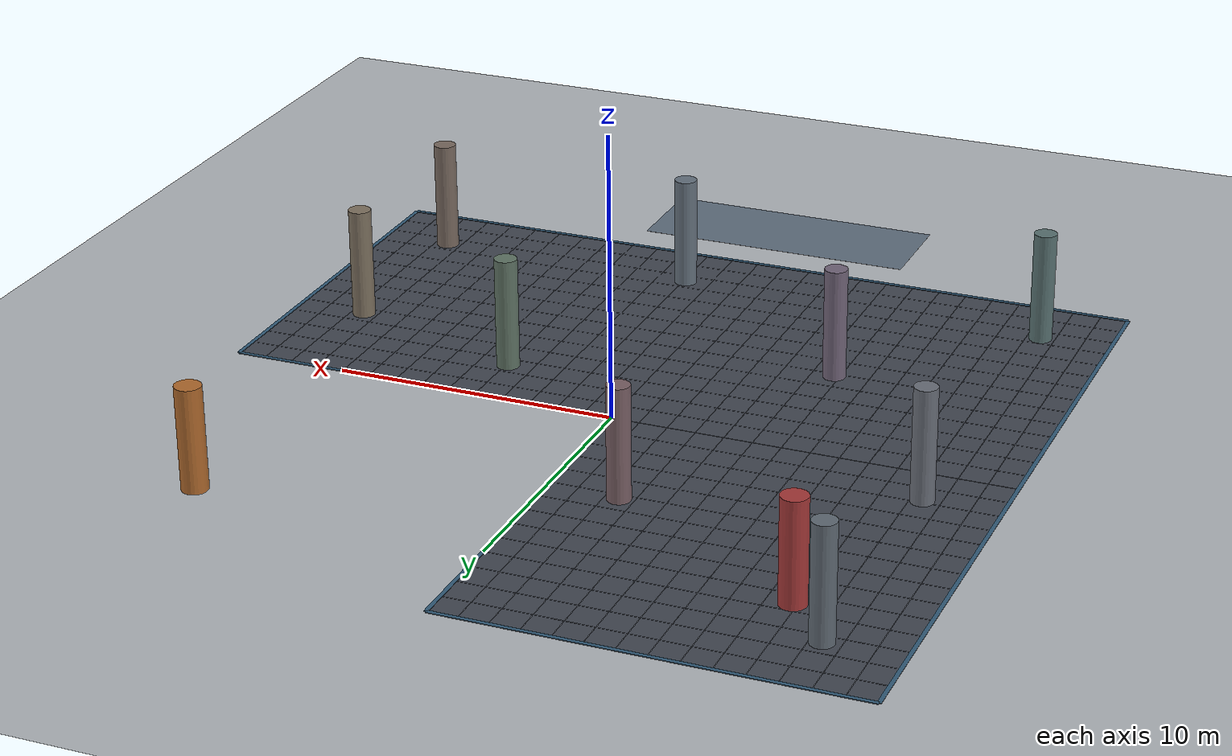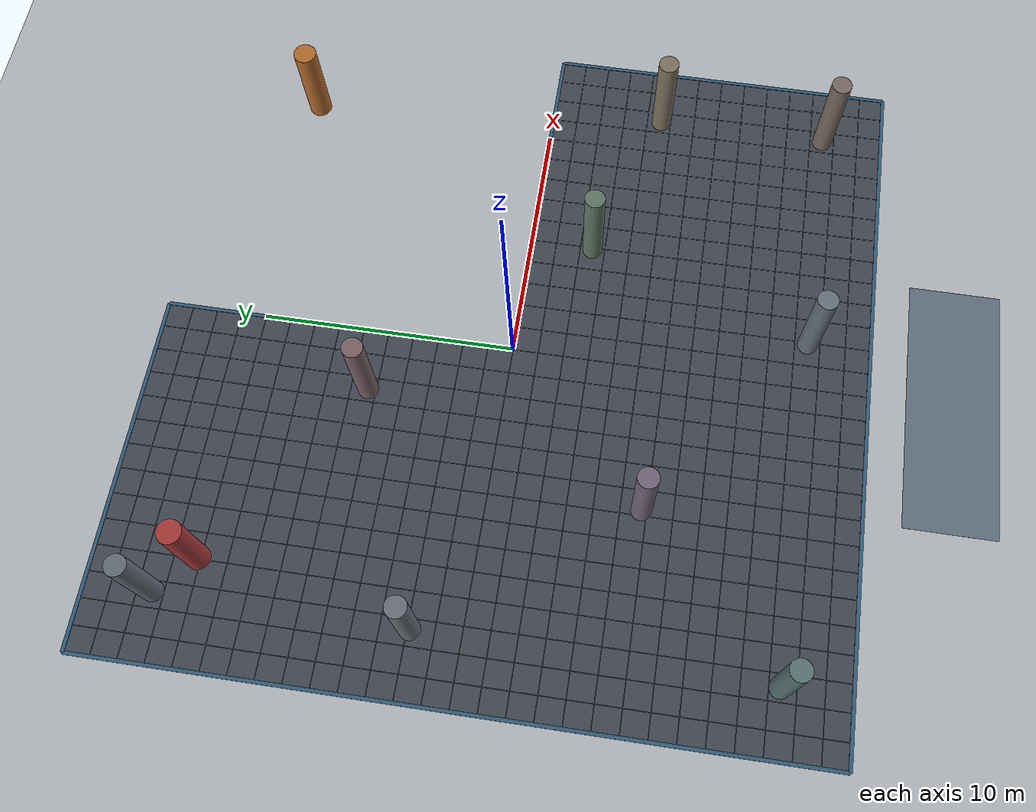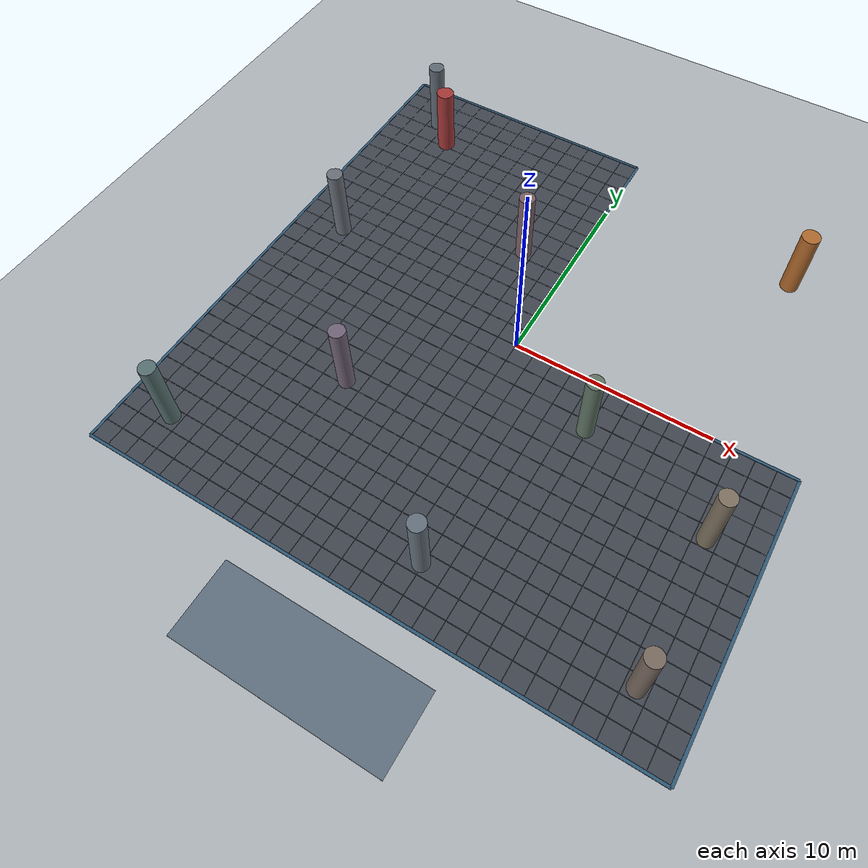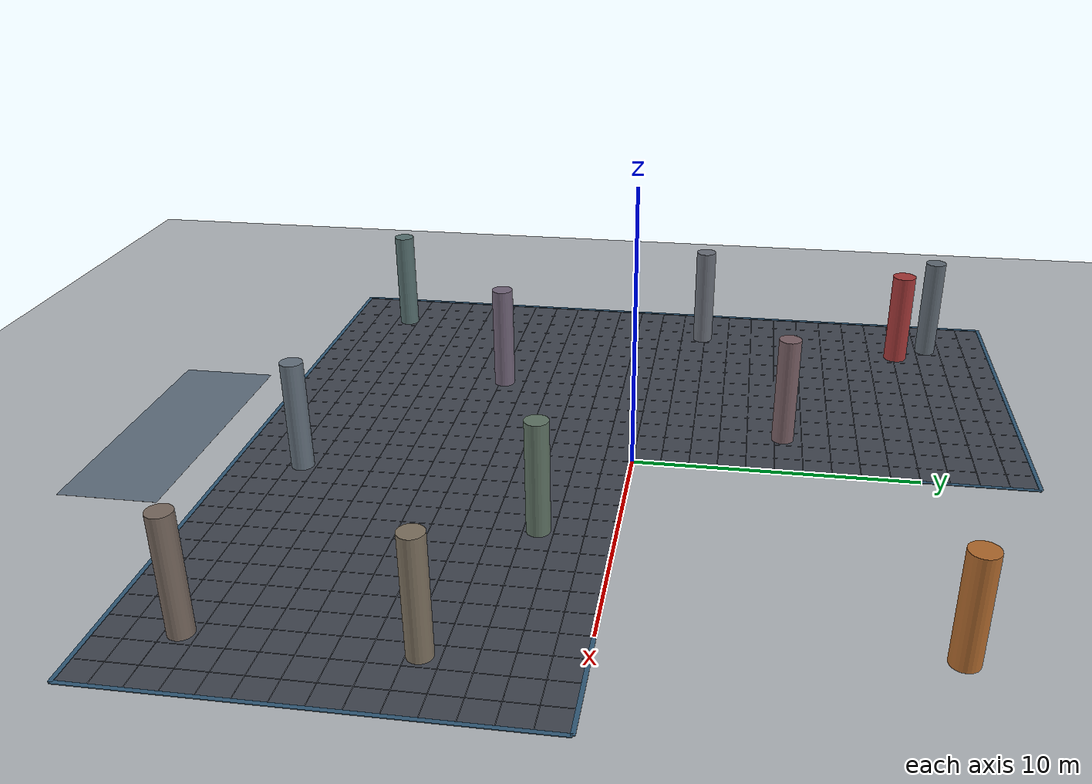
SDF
<?xml version="1.0" ?>
<sdf version="1.8">
  <world name="swarm_world">
    <!-- SPEEDUP SIMULATION: max_step_size=0.001 (1000Hz stable physics) & real_time_factor=1.0 -->
    <physics name="fast_physics" type="ode">
      <max_step_size>0.001</max_step_size>
      <real_time_factor>1.0</real_time_factor>
    </physics>

    <!-- SCENE CONFIG: Muted Architectural Lighting & Background -->
    <scene>
      <ambient>0.62 0.62 0.65 1.0</ambient>
      <background>0.78 0.80 0.83 1.0</background>
      <shadows>true</shadows>
      <grid>false</grid>
    </scene>

    <!-- PLUGIN INTI GAZEBO HARMONIC -->
    <plugin
      filename="gz-sim-physics-system"
      name="gz::sim::systems::Physics">
    </plugin>
    <plugin
      filename="gz-sim-user-commands-system"
      name="gz::sim::systems::UserCommands">
    </plugin>
    <plugin
      filename="gz-sim-scene-broadcaster-system"
      name="gz::sim::systems::SceneBroadcaster">
    </plugin>
    <plugin
      filename="gz-sim-sensors-system"
      name="gz::sim::systems::Sensors">
      <render_engine>ogre2</render_engine>
    </plugin>
    <plugin
      filename="gz-sim-wind-effects-system"
      name="gz::sim::systems::WindEffects">
      <force_approximation_scaling_factor>0.25</force_approximation_scaling_factor>
    </plugin>

    <!-- MATAHARI (SUN) - Soft Balanced Illumination -->
    <light type="directional" name="sun">
      <cast_shadows>true</cast_shadows>
      <pose>0 0 30 0 0 0</pose>
      <diffuse>0.85 0.85 0.87 1</diffuse>
      <specular>0.2 0.2 0.2 1</specular>
      <attenuation>
        <range>1000</range>
        <constant>0.9</constant>
        <linear>0.01</linear>
        <quadratic>0.001</quadratic>
      </attenuation>
      <direction>-0.4 0.2 -0.9</direction>
    </light>

    <!-- LANTAI LUAR (NEUTRAL MATTE CONCRETE EXTERIOR) -->
    <model name="ground_plane">
      <static>true</static>
      <link name="link">
        <collision name="collision">
          <geometry>
            <plane>
              <normal>0 0 1</normal>
              <size>100 100</size>
            </plane>
          </geometry>
        </collision>
        <visual name="visual">
          <geometry>
            <plane>
              <normal>0 0 1</normal>
              <size>100 100</size>
            </plane>
          </geometry>
          <material>
            <ambient>0.70 0.72 0.74 1.0</ambient>
            <diffuse>0.70 0.72 0.74 1.0</diffuse>
            <specular>0.1 0.1 0.1 1.0</specular>
          </material>
        </visual>
      </link>
    </model>

    <!-- GUI TOP-VIEW CAMERA PRESET -->
    <gui fullscreen="0">
      <camera name="user_camera">
        <pose>0.0 0.0 38.0 0.0 1.5708 1.5708</pose>
        <view_controller>orbit</view_controller>
      </camera>
    </gui>

    <!-- STAGING PAD AREA (LANDASAN AWAL 7 DRONE DI Y = -18m) -->
    <model name="staging_pad">
      <static>true</static>
      <link name="pad_link">
        <visual name="pad_v">
          <pose>0.0 -17.25 0.003 0 0 0</pose>
          <geometry><box><size>10.0 3.5 0.005</size></box></geometry>
          <material>
            <ambient>0.26 0.28 0.32 1.0</ambient>
            <diffuse>0.26 0.28 0.32 1.0</diffuse>
          </material>
        </visual>
        <visual name="pad_border">
          <pose>0.0 -17.25 0.005 0 0 0</pose>
          <geometry><box><size>10.1 3.6 0.003</size></box></geometry>
          <material>
            <ambient>0.38 0.44 0.50 1.0</ambient>
            <diffuse>0.38 0.44 0.50 1.0</diffuse>
          </material>
        </visual>
      </link>
    </model>
    <!-- VISUAL LANTAI ARENA & BORDER WILAYAH L_SHAPE                           -->
    <model name="visual_region_floor_l_shape">
      <static>true</static>
      <link name="floor_link">
        <visual name="floor_box_0">
          <pose>0.0000 -7.0000 0.003 0 0 0</pose>
          <geometry><box><size>28.0000 14.0000 0.005</size></box></geometry>
          <material>
            <ambient>0.26 0.28 0.32 1.0</ambient>
            <diffuse>0.26 0.28 0.32 1.0</diffuse>
            <specular>0.15 0.15 0.15 1.0</specular>
          </material>
        </visual>
        <visual name="floor_box_1">
          <pose>-7.0000 7.0000 0.003 0 0 0</pose>
          <geometry><box><size>14.0000 14.0000 0.005</size></box></geometry>
          <material>
            <ambient>0.26 0.28 0.32 1.0</ambient>
            <diffuse>0.26 0.28 0.32 1.0</diffuse>
            <specular>0.15 0.15 0.15 1.0</specular>
          </material>
        </visual>
        <visual name="grid_v_0">
          <pose>-14.00 -7.0000 0.005 0 0 0</pose>
          <geometry><box><size>0.025 14.0000 0.003</size></box></geometry>
          <material>
            <ambient>0.33 0.35 0.39 1.0</ambient>
            <diffuse>0.33 0.35 0.39 1.0</diffuse>
          </material>
        </visual>
        <visual name="grid_v_1">
          <pose>-13.00 -7.0000 0.005 0 0 0</pose>
          <geometry><box><size>0.025 14.0000 0.003</size></box></geometry>
          <material>
            <ambient>0.33 0.35 0.39 1.0</ambient>
            <diffuse>0.33 0.35 0.39 1.0</diffuse>
          </material>
        </visual>
        <visual name="grid_v_2">
          <pose>-12.00 -7.0000 0.005 0 0 0</pose>
          <geometry><box><size>0.025 14.0000 0.003</size></box></geometry>
          <material>
            <ambient>0.33 0.35 0.39 1.0</ambient>
            <diffuse>0.33 0.35 0.39 1.0</diffuse>
          </material>
        </visual>
        <visual name="grid_v_3">
          <pose>-11.00 -7.0000 0.005 0 0 0</pose>
          <geometry><box><size>0.025 14.0000 0.003</size></box></geometry>
          <material>
            <ambient>0.33 0.35 0.39 1.0</ambient>
            <diffuse>0.33 0.35 0.39 1.0</diffuse>
          </material>
        </visual>
        <visual name="grid_v_4">
          <pose>-10.00 -7.0000 0.005 0 0 0</pose>
          <geometry><box><size>0.025 14.0000 0.003</size></box></geometry>
          <material>
            <ambient>0.33 0.35 0.39 1.0</ambient>
            <diffuse>0.33 0.35 0.39 1.0</diffuse>
          </material>
        </visual>
        <visual name="grid_v_5">
          <pose>-9.00 -7.0000 0.005 0 0 0</pose>
          <geometry><box><size>0.025 14.0000 0.003</size></box></geometry>
          <material>
            <ambient>0.33 0.35 0.39 1.0</ambient>
            <diffuse>0.33 0.35 0.39 1.0</diffuse>
          </material>
        </visual>
        <visual name="grid_v_6">
          <pose>-8.00 -7.0000 0.005 0 0 0</pose>
          <geometry><box><size>0.025 14.0000 0.003</size></box></geometry>
          <material>
            <ambient>0.33 0.35 0.39 1.0</ambient>
            <diffuse>0.33 0.35 0.39 1.0</diffuse>
          </material>
        </visual>
        <visual name="grid_v_7">
          <pose>-7.00 -7.0000 0.005 0 0 0</pose>
          <geometry><box><size>0.025 14.0000 0.003</size></box></geometry>
          <material>
            <ambient>0.33 0.35 0.39 1.0</ambient>
            <diffuse>0.33 0.35 0.39 1.0</diffuse>
          </material>
        </visual>
        <visual name="grid_v_8">
          <pose>-6.00 -7.0000 0.005 0 0 0</pose>
          <geometry><box><size>0.025 14.0000 0.003</size></box></geometry>
          <material>
            <ambient>0.33 0.35 0.39 1.0</ambient>
            <diffuse>0.33 0.35 0.39 1.0</diffuse>
          </material>
        </visual>
        <visual name="grid_v_9">
          <pose>-5.00 -7.0000 0.005 0 0 0</pose>
          <geometry><box><size>0.025 14.0000 0.003</size></box></geometry>
          <material>
            <ambient>0.33 0.35 0.39 1.0</ambient>
            <diffuse>0.33 0.35 0.39 1.0</diffuse>
          </material>
        </visual>
        <visual name="grid_v_10">
          <pose>-4.00 -7.0000 0.005 0 0 0</pose>
          <geometry><box><size>0.025 14.0000 0.003</size></box></geometry>
          <material>
            <ambient>0.33 0.35 0.39 1.0</ambient>
            <diffuse>0.33 0.35 0.39 1.0</diffuse>
          </material>
        </visual>
        <visual name="grid_v_11">
          <pose>-3.00 -7.0000 0.005 0 0 0</pose>
          <geometry><box><size>0.025 14.0000 0.003</size></box></geometry>
          <material>
            <ambient>0.33 0.35 0.39 1.0</ambient>
            <diffuse>0.33 0.35 0.39 1.0</diffuse>
          </material>
        </visual>
        <visual name="grid_v_12">
          <pose>-2.00 -7.0000 0.005 0 0 0</pose>
          <geometry><box><size>0.025 14.0000 0.003</size></box></geometry>
          <material>
            <ambient>0.33 0.35 0.39 1.0</ambient>
            <diffuse>0.33 0.35 0.39 1.0</diffuse>
          </material>
        </visual>
        <visual name="grid_v_13">
          <pose>-1.00 -7.0000 0.005 0 0 0</pose>
          <geometry><box><size>0.025 14.0000 0.003</size></box></geometry>
          <material>
            <ambient>0.33 0.35 0.39 1.0</ambient>
            <diffuse>0.33 0.35 0.39 1.0</diffuse>
          </material>
        </visual>
        <visual name="grid_v_14">
          <pose>0.00 -7.0000 0.005 0 0 0</pose>
          <geometry><box><size>0.025 14.0000 0.003</size></box></geometry>
          <material>
            <ambient>0.33 0.35 0.39 1.0</ambient>
            <diffuse>0.33 0.35 0.39 1.0</diffuse>
          </material>
        </visual>
        <visual name="grid_v_15">
          <pose>1.00 -7.0000 0.005 0 0 0</pose>
          <geometry><box><size>0.025 14.0000 0.003</size></box></geometry>
          <material>
            <ambient>0.33 0.35 0.39 1.0</ambient>
            <diffuse>0.33 0.35 0.39 1.0</diffuse>
          </material>
        </visual>
        <visual name="grid_v_16">
          <pose>2.00 -7.0000 0.005 0 0 0</pose>
          <geometry><box><size>0.025 14.0000 0.003</size></box></geometry>
          <material>
            <ambient>0.33 0.35 0.39 1.0</ambient>
            <diffuse>0.33 0.35 0.39 1.0</diffuse>
          </material>
        </visual>
        <visual name="grid_v_17">
          <pose>3.00 -7.0000 0.005 0 0 0</pose>
          <geometry><box><size>0.025 14.0000 0.003</size></box></geometry>
          <material>
            <ambient>0.33 0.35 0.39 1.0</ambient>
            <diffuse>0.33 0.35 0.39 1.0</diffuse>
          </material>
        </visual>
        <visual name="grid_v_18">
          <pose>4.00 -7.0000 0.005 0 0 0</pose>
          <geometry><box><size>0.025 14.0000 0.003</size></box></geometry>
          <material>
            <ambient>0.33 0.35 0.39 1.0</ambient>
            <diffuse>0.33 0.35 0.39 1.0</diffuse>
          </material>
        </visual>
        <visual name="grid_v_19">
          <pose>5.00 -7.0000 0.005 0 0 0</pose>
          <geometry><box><size>0.025 14.0000 0.003</size></box></geometry>
          <material>
            <ambient>0.33 0.35 0.39 1.0</ambient>
            <diffuse>0.33 0.35 0.39 1.0</diffuse>
          </material>
        </visual>
        <visual name="grid_v_20">
          <pose>6.00 -7.0000 0.005 0 0 0</pose>
          <geometry><box><size>0.025 14.0000 0.003</size></box></geometry>
          <material>
            <ambient>0.33 0.35 0.39 1.0</ambient>
            <diffuse>0.33 0.35 0.39 1.0</diffuse>
          </material>
        </visual>
        <visual name="grid_v_21">
          <pose>7.00 -7.0000 0.005 0 0 0</pose>
          <geometry><box><size>0.025 14.0000 0.003</size></box></geometry>
          <material>
            <ambient>0.33 0.35 0.39 1.0</ambient>
            <diffuse>0.33 0.35 0.39 1.0</diffuse>
          </material>
        </visual>
        <visual name="grid_v_22">
          <pose>8.00 -7.0000 0.005 0 0 0</pose>
          <geometry><box><size>0.025 14.0000 0.003</size></box></geometry>
          <material>
            <ambient>0.33 0.35 0.39 1.0</ambient>
            <diffuse>0.33 0.35 0.39 1.0</diffuse>
          </material>
        </visual>
        <visual name="grid_v_23">
          <pose>9.00 -7.0000 0.005 0 0 0</pose>
          <geometry><box><size>0.025 14.0000 0.003</size></box></geometry>
          <material>
            <ambient>0.33 0.35 0.39 1.0</ambient>
            <diffuse>0.33 0.35 0.39 1.0</diffuse>
          </material>
        </visual>
        <visual name="grid_v_24">
          <pose>10.00 -7.0000 0.005 0 0 0</pose>
          <geometry><box><size>0.025 14.0000 0.003</size></box></geometry>
          <material>
            <ambient>0.33 0.35 0.39 1.0</ambient>
            <diffuse>0.33 0.35 0.39 1.0</diffuse>
          </material>
        </visual>
        <visual name="grid_v_25">
          <pose>11.00 -7.0000 0.005 0 0 0</pose>
          <geometry><box><size>0.025 14.0000 0.003</size></box></geometry>
          <material>
            <ambient>0.33 0.35 0.39 1.0</ambient>
            <diffuse>0.33 0.35 0.39 1.0</diffuse>
          </material>
        </visual>
        <visual name="grid_v_26">
          <pose>12.00 -7.0000 0.005 0 0 0</pose>
          <geometry><box><size>0.025 14.0000 0.003</size></box></geometry>
          <material>
            <ambient>0.33 0.35 0.39 1.0</ambient>
            <diffuse>0.33 0.35 0.39 1.0</diffuse>
          </material>
        </visual>
        <visual name="grid_v_27">
          <pose>13.00 -7.0000 0.005 0 0 0</pose>
          <geometry><box><size>0.025 14.0000 0.003</size></box></geometry>
          <material>
            <ambient>0.33 0.35 0.39 1.0</ambient>
            <diffuse>0.33 0.35 0.39 1.0</diffuse>
          </material>
        </visual>
        <visual name="grid_v_28">
          <pose>14.00 -7.0000 0.005 0 0 0</pose>
          <geometry><box><size>0.025 14.0000 0.003</size></box></geometry>
          <material>
            <ambient>0.33 0.35 0.39 1.0</ambient>
            <diffuse>0.33 0.35 0.39 1.0</diffuse>
          </material>
        </visual>
        <visual name="grid_h_29">
          <pose>0.0000 -14.00 0.005 0 0 0</pose>
          <geometry><box><size>28.0000 0.025 0.003</size></box></geometry>
          <material>
            <ambient>0.33 0.35 0.39 1.0</ambient>
            <diffuse>0.33 0.35 0.39 1.0</diffuse>
          </material>
        </visual>
        <visual name="grid_h_30">
          <pose>0.0000 -13.00 0.005 0 0 0</pose>
          <geometry><box><size>28.0000 0.025 0.003</size></box></geometry>
          <material>
            <ambient>0.33 0.35 0.39 1.0</ambient>
            <diffuse>0.33 0.35 0.39 1.0</diffuse>
          </material>
        </visual>
        <visual name="grid_h_31">
          <pose>0.0000 -12.00 0.005 0 0 0</pose>
          <geometry><box><size>28.0000 0.025 0.003</size></box></geometry>
          <material>
            <ambient>0.33 0.35 0.39 1.0</ambient>
            <diffuse>0.33 0.35 0.39 1.0</diffuse>
          </material>
        </visual>
        <visual name="grid_h_32">
          <pose>0.0000 -11.00 0.005 0 0 0</pose>
          <geometry><box><size>28.0000 0.025 0.003</size></box></geometry>
          <material>
            <ambient>0.33 0.35 0.39 1.0</ambient>
            <diffuse>0.33 0.35 0.39 1.0</diffuse>
          </material>
        </visual>
        <visual name="grid_h_33">
          <pose>0.0000 -10.00 0.005 0 0 0</pose>
          <geometry><box><size>28.0000 0.025 0.003</size></box></geometry>
          <material>
            <ambient>0.33 0.35 0.39 1.0</ambient>
            <diffuse>0.33 0.35 0.39 1.0</diffuse>
          </material>
        </visual>
        <visual name="grid_h_34">
          <pose>0.0000 -9.00 0.005 0 0 0</pose>
          <geometry><box><size>28.0000 0.025 0.003</size></box></geometry>
          <material>
            <ambient>0.33 0.35 0.39 1.0</ambient>
            <diffuse>0.33 0.35 0.39 1.0</diffuse>
          </material>
        </visual>
        <visual name="grid_h_35">
          <pose>0.0000 -8.00 0.005 0 0 0</pose>
          <geometry><box><size>28.0000 0.025 0.003</size></box></geometry>
          <material>
            <ambient>0.33 0.35 0.39 1.0</ambient>
            <diffuse>0.33 0.35 0.39 1.0</diffuse>
          </material>
        </visual>
        <visual name="grid_h_36">
          <pose>0.0000 -7.00 0.005 0 0 0</pose>
          <geometry><box><size>28.0000 0.025 0.003</size></box></geometry>
          <material>
            <ambient>0.33 0.35 0.39 1.0</ambient>
            <diffuse>0.33 0.35 0.39 1.0</diffuse>
          </material>
        </visual>
        <visual name="grid_h_37">
          <pose>0.0000 -6.00 0.005 0 0 0</pose>
          <geometry><box><size>28.0000 0.025 0.003</size></box></geometry>
          <material>
            <ambient>0.33 0.35 0.39 1.0</ambient>
            <diffuse>0.33 0.35 0.39 1.0</diffuse>
          </material>
        </visual>
        <visual name="grid_h_38">
          <pose>0.0000 -5.00 0.005 0 0 0</pose>
          <geometry><box><size>28.0000 0.025 0.003</size></box></geometry>
          <material>
            <ambient>0.33 0.35 0.39 1.0</ambient>
            <diffuse>0.33 0.35 0.39 1.0</diffuse>
          </material>
        </visual>
        <visual name="grid_h_39">
          <pose>0.0000 -4.00 0.005 0 0 0</pose>
          <geometry><box><size>28.0000 0.025 0.003</size></box></geometry>
          <material>
            <ambient>0.33 0.35 0.39 1.0</ambient>
            <diffuse>0.33 0.35 0.39 1.0</diffuse>
          </material>
        </visual>
        <visual name="grid_h_40">
          <pose>0.0000 -3.00 0.005 0 0 0</pose>
          <geometry><box><size>28.0000 0.025 0.003</size></box></geometry>
          <material>
            <ambient>0.33 0.35 0.39 1.0</ambient>
            <diffuse>0.33 0.35 0.39 1.0</diffuse>
          </material>
        </visual>
        <visual name="grid_h_41">
          <pose>0.0000 -2.00 0.005 0 0 0</pose>
          <geometry><box><size>28.0000 0.025 0.003</size></box></geometry>
          <material>
            <ambient>0.33 0.35 0.39 1.0</ambient>
            <diffuse>0.33 0.35 0.39 1.0</diffuse>
          </material>
        </visual>
        <visual name="grid_h_42">
          <pose>0.0000 -1.00 0.005 0 0 0</pose>
          <geometry><box><size>28.0000 0.025 0.003</size></box></geometry>
          <material>
            <ambient>0.33 0.35 0.39 1.0</ambient>
            <diffuse>0.33 0.35 0.39 1.0</diffuse>
          </material>
        </visual>
        <visual name="grid_h_43">
          <pose>0.0000 0.00 0.005 0 0 0</pose>
          <geometry><box><size>28.0000 0.025 0.003</size></box></geometry>
          <material>
            <ambient>0.33 0.35 0.39 1.0</ambient>
            <diffuse>0.33 0.35 0.39 1.0</diffuse>
          </material>
        </visual>
        <visual name="grid_v_44">
          <pose>-14.00 7.0000 0.005 0 0 0</pose>
          <geometry><box><size>0.025 14.0000 0.003</size></box></geometry>
          <material>
            <ambient>0.33 0.35 0.39 1.0</ambient>
            <diffuse>0.33 0.35 0.39 1.0</diffuse>
          </material>
        </visual>
        <visual name="grid_v_45">
          <pose>-13.00 7.0000 0.005 0 0 0</pose>
          <geometry><box><size>0.025 14.0000 0.003</size></box></geometry>
          <material>
            <ambient>0.33 0.35 0.39 1.0</ambient>
            <diffuse>0.33 0.35 0.39 1.0</diffuse>
          </material>
        </visual>
        <visual name="grid_v_46">
          <pose>-12.00 7.0000 0.005 0 0 0</pose>
          <geometry><box><size>0.025 14.0000 0.003</size></box></geometry>
          <material>
            <ambient>0.33 0.35 0.39 1.0</ambient>
            <diffuse>0.33 0.35 0.39 1.0</diffuse>
          </material>
        </visual>
        <visual name="grid_v_47">
          <pose>-11.00 7.0000 0.005 0 0 0</pose>
          <geometry><box><size>0.025 14.0000 0.003</size></box></geometry>
          <material>
            <ambient>0.33 0.35 0.39 1.0</ambient>
            <diffuse>0.33 0.35 0.39 1.0</diffuse>
          </material>
        </visual>
        <visual name="grid_v_48">
          <pose>-10.00 7.0000 0.005 0 0 0</pose>
          <geometry><box><size>0.025 14.0000 0.003</size></box></geometry>
          <material>
            <ambient>0.33 0.35 0.39 1.0</ambient>
            <diffuse>0.33 0.35 0.39 1.0</diffuse>
          </material>
        </visual>
        <visual name="grid_v_49">
          <pose>-9.00 7.0000 0.005 0 0 0</pose>
          <geometry><box><size>0.025 14.0000 0.003</size></box></geometry>
          <material>
            <ambient>0.33 0.35 0.39 1.0</ambient>
            <diffuse>0.33 0.35 0.39 1.0</diffuse>
          </material>
        </visual>
        <visual name="grid_v_50">
          <pose>-8.00 7.0000 0.005 0 0 0</pose>
          <geometry><box><size>0.025 14.0000 0.003</size></box></geometry>
          <material>
            <ambient>0.33 0.35 0.39 1.0</ambient>
            <diffuse>0.33 0.35 0.39 1.0</diffuse>
          </material>
        </visual>
        <visual name="grid_v_51">
          <pose>-7.00 7.0000 0.005 0 0 0</pose>
          <geometry><box><size>0.025 14.0000 0.003</size></box></geometry>
          <material>
            <ambient>0.33 0.35 0.39 1.0</ambient>
            <diffuse>0.33 0.35 0.39 1.0</diffuse>
          </material>
        </visual>
        <visual name="grid_v_52">
          <pose>-6.00 7.0000 0.005 0 0 0</pose>
          <geometry><box><size>0.025 14.0000 0.003</size></box></geometry>
          <material>
            <ambient>0.33 0.35 0.39 1.0</ambient>
            <diffuse>0.33 0.35 0.39 1.0</diffuse>
          </material>
        </visual>
        <visual name="grid_v_53">
          <pose>-5.00 7.0000 0.005 0 0 0</pose>
          <geometry><box><size>0.025 14.0000 0.003</size></box></geometry>
          <material>
            <ambient>0.33 0.35 0.39 1.0</ambient>
            <diffuse>0.33 0.35 0.39 1.0</diffuse>
          </material>
        </visual>
        <visual name="grid_v_54">
          <pose>-4.00 7.0000 0.005 0 0 0</pose>
          <geometry><box><size>0.025 14.0000 0.003</size></box></geometry>
          <material>
            <ambient>0.33 0.35 0.39 1.0</ambient>
            <diffuse>0.33 0.35 0.39 1.0</diffuse>
          </material>
        </visual>
        <visual name="grid_v_55">
          <pose>-3.00 7.0000 0.005 0 0 0</pose>
          <geometry><box><size>0.025 14.0000 0.003</size></box></geometry>
          <material>
            <ambient>0.33 0.35 0.39 1.0</ambient>
            <diffuse>0.33 0.35 0.39 1.0</diffuse>
          </material>
        </visual>
        <visual name="grid_v_56">
          <pose>-2.00 7.0000 0.005 0 0 0</pose>
          <geometry><box><size>0.025 14.0000 0.003</size></box></geometry>
          <material>
            <ambient>0.33 0.35 0.39 1.0</ambient>
            <diffuse>0.33 0.35 0.39 1.0</diffuse>
          </material>
        </visual>
        <visual name="grid_v_57">
          <pose>-1.00 7.0000 0.005 0 0 0</pose>
          <geometry><box><size>0.025 14.0000 0.003</size></box></geometry>
          <material>
            <ambient>0.33 0.35 0.39 1.0</ambient>
            <diffuse>0.33 0.35 0.39 1.0</diffuse>
          </material>
        </visual>
        <visual name="grid_v_58">
          <pose>0.00 7.0000 0.005 0 0 0</pose>
          <geometry><box><size>0.025 14.0000 0.003</size></box></geometry>
          <material>
            <ambient>0.33 0.35 0.39 1.0</ambient>
            <diffuse>0.33 0.35 0.39 1.0</diffuse>
          </material>
        </visual>
        <visual name="grid_h_59">
          <pose>-7.0000 0.00 0.005 0 0 0</pose>
          <geometry><box><size>14.0000 0.025 0.003</size></box></geometry>
          <material>
            <ambient>0.33 0.35 0.39 1.0</ambient>
            <diffuse>0.33 0.35 0.39 1.0</diffuse>
          </material>
        </visual>
        <visual name="grid_h_60">
          <pose>-7.0000 1.00 0.005 0 0 0</pose>
          <geometry><box><size>14.0000 0.025 0.003</size></box></geometry>
          <material>
            <ambient>0.33 0.35 0.39 1.0</ambient>
            <diffuse>0.33 0.35 0.39 1.0</diffuse>
          </material>
        </visual>
        <visual name="grid_h_61">
          <pose>-7.0000 2.00 0.005 0 0 0</pose>
          <geometry><box><size>14.0000 0.025 0.003</size></box></geometry>
          <material>
            <ambient>0.33 0.35 0.39 1.0</ambient>
            <diffuse>0.33 0.35 0.39 1.0</diffuse>
          </material>
        </visual>
        <visual name="grid_h_62">
          <pose>-7.0000 3.00 0.005 0 0 0</pose>
          <geometry><box><size>14.0000 0.025 0.003</size></box></geometry>
          <material>
            <ambient>0.33 0.35 0.39 1.0</ambient>
            <diffuse>0.33 0.35 0.39 1.0</diffuse>
          </material>
        </visual>
        <visual name="grid_h_63">
          <pose>-7.0000 4.00 0.005 0 0 0</pose>
          <geometry><box><size>14.0000 0.025 0.003</size></box></geometry>
          <material>
            <ambient>0.33 0.35 0.39 1.0</ambient>
            <diffuse>0.33 0.35 0.39 1.0</diffuse>
          </material>
        </visual>
        <visual name="grid_h_64">
          <pose>-7.0000 5.00 0.005 0 0 0</pose>
          <geometry><box><size>14.0000 0.025 0.003</size></box></geometry>
          <material>
            <ambient>0.33 0.35 0.39 1.0</ambient>
            <diffuse>0.33 0.35 0.39 1.0</diffuse>
          </material>
        </visual>
        <visual name="grid_h_65">
          <pose>-7.0000 6.00 0.005 0 0 0</pose>
          <geometry><box><size>14.0000 0.025 0.003</size></box></geometry>
          <material>
            <ambient>0.33 0.35 0.39 1.0</ambient>
            <diffuse>0.33 0.35 0.39 1.0</diffuse>
          </material>
        </visual>
        <visual name="grid_h_66">
          <pose>-7.0000 7.00 0.005 0 0 0</pose>
          <geometry><box><size>14.0000 0.025 0.003</size></box></geometry>
          <material>
            <ambient>0.33 0.35 0.39 1.0</ambient>
            <diffuse>0.33 0.35 0.39 1.0</diffuse>
          </material>
        </visual>
        <visual name="grid_h_67">
          <pose>-7.0000 8.00 0.005 0 0 0</pose>
          <geometry><box><size>14.0000 0.025 0.003</size></box></geometry>
          <material>
            <ambient>0.33 0.35 0.39 1.0</ambient>
            <diffuse>0.33 0.35 0.39 1.0</diffuse>
          </material>
        </visual>
        <visual name="grid_h_68">
          <pose>-7.0000 9.00 0.005 0 0 0</pose>
          <geometry><box><size>14.0000 0.025 0.003</size></box></geometry>
          <material>
            <ambient>0.33 0.35 0.39 1.0</ambient>
            <diffuse>0.33 0.35 0.39 1.0</diffuse>
          </material>
        </visual>
        <visual name="grid_h_69">
          <pose>-7.0000 10.00 0.005 0 0 0</pose>
          <geometry><box><size>14.0000 0.025 0.003</size></box></geometry>
          <material>
            <ambient>0.33 0.35 0.39 1.0</ambient>
            <diffuse>0.33 0.35 0.39 1.0</diffuse>
          </material>
        </visual>
        <visual name="grid_h_70">
          <pose>-7.0000 11.00 0.005 0 0 0</pose>
          <geometry><box><size>14.0000 0.025 0.003</size></box></geometry>
          <material>
            <ambient>0.33 0.35 0.39 1.0</ambient>
            <diffuse>0.33 0.35 0.39 1.0</diffuse>
          </material>
        </visual>
        <visual name="grid_h_71">
          <pose>-7.0000 12.00 0.005 0 0 0</pose>
          <geometry><box><size>14.0000 0.025 0.003</size></box></geometry>
          <material>
            <ambient>0.33 0.35 0.39 1.0</ambient>
            <diffuse>0.33 0.35 0.39 1.0</diffuse>
          </material>
        </visual>
        <visual name="grid_h_72">
          <pose>-7.0000 13.00 0.005 0 0 0</pose>
          <geometry><box><size>14.0000 0.025 0.003</size></box></geometry>
          <material>
            <ambient>0.33 0.35 0.39 1.0</ambient>
            <diffuse>0.33 0.35 0.39 1.0</diffuse>
          </material>
        </visual>
        <visual name="grid_h_73">
          <pose>-7.0000 14.00 0.005 0 0 0</pose>
          <geometry><box><size>14.0000 0.025 0.003</size></box></geometry>
          <material>
            <ambient>0.33 0.35 0.39 1.0</ambient>
            <diffuse>0.33 0.35 0.39 1.0</diffuse>
          </material>
        </visual>
      </link>
    </model>

    <!-- BORDER PEMBATAS KELILING (MUTED STEEL BLUE / SLATE CURB) -->
    <model name="region_perimeter_border_l_shape">
      <static>true</static>
      <link name="border_link">
        <visual name="border_edge_0">
          <pose>0.0000 -14.0000 0.015 0 0 0.0000</pose>
          <geometry><box><size>28.0000 0.14 0.025</size></box></geometry>
          <material>
            <ambient>0.20 0.36 0.48 1.0</ambient>
            <diffuse>0.20 0.36 0.48 1.0</diffuse>
            <specular>0.25 0.25 0.25 1.0</specular>
          </material>
        </visual>
        <visual name="border_edge_1">
          <pose>14.0000 -7.0000 0.015 0 0 1.5708</pose>
          <geometry><box><size>14.0000 0.14 0.025</size></box></geometry>
          <material>
            <ambient>0.20 0.36 0.48 1.0</ambient>
            <diffuse>0.20 0.36 0.48 1.0</diffuse>
            <specular>0.25 0.25 0.25 1.0</specular>
          </material>
        </visual>
        <visual name="border_edge_2">
          <pose>7.0000 0.0000 0.015 0 0 3.1416</pose>
          <geometry><box><size>14.0000 0.14 0.025</size></box></geometry>
          <material>
            <ambient>0.20 0.36 0.48 1.0</ambient>
            <diffuse>0.20 0.36 0.48 1.0</diffuse>
            <specular>0.25 0.25 0.25 1.0</specular>
          </material>
        </visual>
        <visual name="border_edge_3">
          <pose>0.0000 7.0000 0.015 0 0 1.5708</pose>
          <geometry><box><size>14.0000 0.14 0.025</size></box></geometry>
          <material>
            <ambient>0.20 0.36 0.48 1.0</ambient>
            <diffuse>0.20 0.36 0.48 1.0</diffuse>
            <specular>0.25 0.25 0.25 1.0</specular>
          </material>
        </visual>
        <visual name="border_edge_4">
          <pose>-7.0000 14.0000 0.015 0 0 3.1416</pose>
          <geometry><box><size>14.0000 0.14 0.025</size></box></geometry>
          <material>
            <ambient>0.20 0.36 0.48 1.0</ambient>
            <diffuse>0.20 0.36 0.48 1.0</diffuse>
            <specular>0.25 0.25 0.25 1.0</specular>
          </material>
        </visual>
        <visual name="border_edge_5">
          <pose>-14.0000 0.0000 0.015 0 0 -1.5708</pose>
          <geometry><box><size>28.0000 0.14 0.025</size></box></geometry>
          <material>
            <ambient>0.20 0.36 0.48 1.0</ambient>
            <diffuse>0.20 0.36 0.48 1.0</diffuse>
            <specular>0.25 0.25 0.25 1.0</specular>
          </material>
        </visual>
      </link>
    </model>
    <model name="static_obs_301">
      <static>true</static>
      <pose>1.9000 -11.5000 2.0000 0 0 0</pose>
      <link name="link">
        <collision name="collision">
          <geometry><cylinder><radius>0.4000</radius><length>4.0000</length></cylinder></geometry>
        </collision>
        <visual name="visual">
          <geometry><cylinder><radius>0.4000</radius><length>4.0000</length></cylinder></geometry>
          <material>
            <ambient>0.40 0.45 0.50 1.0</ambient>
            <diffuse>0.40 0.45 0.50 1.0</diffuse>
            <specular>0.3 0.3 0.3 1.0</specular>
          </material>
        </visual>
      </link>
    </model>

    <model name="static_obs_302">
      <static>true</static>
      <pose>11.5000 -11.5000 2.0000 0 0 0</pose>
      <link name="link">
        <collision name="collision">
          <geometry><cylinder><radius>0.4000</radius><length>4.0000</length></cylinder></geometry>
        </collision>
        <visual name="visual">
          <geometry><cylinder><radius>0.4000</radius><length>4.0000</length></cylinder></geometry>
          <material>
            <ambient>0.48 0.42 0.38 1.0</ambient>
            <diffuse>0.48 0.42 0.38 1.0</diffuse>
            <specular>0.3 0.3 0.3 1.0</specular>
          </material>
        </visual>
      </link>
    </model>

    <model name="static_obs_303">
      <static>true</static>
      <pose>-11.5000 -11.4000 2.0000 0 0 0</pose>
      <link name="link">
        <collision name="collision">
          <geometry><cylinder><radius>0.4000</radius><length>4.0000</length></cylinder></geometry>
        </collision>
        <visual name="visual">
          <geometry><cylinder><radius>0.4000</radius><length>4.0000</length></cylinder></geometry>
          <material>
            <ambient>0.35 0.45 0.45 1.0</ambient>
            <diffuse>0.35 0.45 0.45 1.0</diffuse>
            <specular>0.3 0.3 0.3 1.0</specular>
          </material>
        </visual>
      </link>
    </model>

    <model name="static_obs_304">
      <static>true</static>
      <pose>-5.8000 -5.8000 2.0000 0 0 0</pose>
      <link name="link">
        <collision name="collision">
          <geometry><cylinder><radius>0.4000</radius><length>4.0000</length></cylinder></geometry>
        </collision>
        <visual name="visual">
          <geometry><cylinder><radius>0.4000</radius><length>4.0000</length></cylinder></geometry>
          <material>
            <ambient>0.45 0.40 0.48 1.0</ambient>
            <diffuse>0.45 0.40 0.48 1.0</diffuse>
            <specular>0.3 0.3 0.3 1.0</specular>
          </material>
        </visual>
      </link>
    </model>

    <model name="static_obs_305">
      <static>true</static>
      <pose>11.5000 -4.6000 2.0000 0 0 0</pose>
      <link name="link">
        <collision name="collision">
          <geometry><cylinder><radius>0.4000</radius><length>4.0000</length></cylinder></geometry>
        </collision>
        <visual name="visual">
          <geometry><cylinder><radius>0.4000</radius><length>4.0000</length></cylinder></geometry>
          <material>
            <ambient>0.50 0.45 0.38 1.0</ambient>
            <diffuse>0.50 0.45 0.38 1.0</diffuse>
            <specular>0.3 0.3 0.3 1.0</specular>
          </material>
        </visual>
      </link>
    </model>

    <model name="static_obs_306">
      <static>true</static>
      <pose>4.9000 -2.5000 2.0000 0 0 0</pose>
      <link name="link">
        <collision name="collision">
          <geometry><cylinder><radius>0.4000</radius><length>4.0000</length></cylinder></geometry>
        </collision>
        <visual name="visual">
          <geometry><cylinder><radius>0.4000</radius><length>4.0000</length></cylinder></geometry>
          <material>
            <ambient>0.38 0.46 0.40 1.0</ambient>
            <diffuse>0.38 0.46 0.40 1.0</diffuse>
            <specular>0.3 0.3 0.3 1.0</specular>
          </material>
        </visual>
      </link>
    </model>

    <model name="static_obs_307">
      <static>true</static>
      <pose>-11.4000 1.9000 2.0000 0 0 0</pose>
      <link name="link">
        <collision name="collision">
          <geometry><cylinder><radius>0.4000</radius><length>4.0000</length></cylinder></geometry>
        </collision>
        <visual name="visual">
          <geometry><cylinder><radius>0.4000</radius><length>4.0000</length></cylinder></geometry>
          <material>
            <ambient>0.42 0.44 0.48 1.0</ambient>
            <diffuse>0.42 0.44 0.48 1.0</diffuse>
            <specular>0.3 0.3 0.3 1.0</specular>
          </material>
        </visual>
      </link>
    </model>

    <model name="static_obs_308">
      <static>true</static>
      <pose>-2.5000 5.3000 2.0000 0 0 0</pose>
      <link name="link">
        <collision name="collision">
          <geometry><cylinder><radius>0.4000</radius><length>4.0000</length></cylinder></geometry>
        </collision>
        <visual name="visual">
          <geometry><cylinder><radius>0.4000</radius><length>4.0000</length></cylinder></geometry>
          <material>
            <ambient>0.48 0.38 0.40 1.0</ambient>
            <diffuse>0.48 0.38 0.40 1.0</diffuse>
            <specular>0.3 0.3 0.3 1.0</specular>
          </material>
        </visual>
      </link>
    </model>

    <model name="static_obs_309">
      <static>true</static>
      <pose>-11.4000 11.4000 2.0000 0 0 0</pose>
      <link name="link">
        <collision name="collision">
          <geometry><cylinder><radius>0.4000</radius><length>4.0000</length></cylinder></geometry>
        </collision>
        <visual name="visual">
          <geometry><cylinder><radius>0.4000</radius><length>4.0000</length></cylinder></geometry>
          <material>
            <ambient>0.38 0.42 0.46 1.0</ambient>
            <diffuse>0.38 0.42 0.46 1.0</diffuse>
            <specular>0.3 0.3 0.3 1.0</specular>
          </material>
        </visual>
      </link>
    </model>
\
    <!-- 2 RINTANGAN DINAMIS (DYNAMIC MOVING OBSTACLES) POLA SILANG "X"       -->
    <!-- Warna Muted Industrial Hazard: Dark Crimson & Warm Amber              -->
    <model name="dynamic_obs_1">
      <static>false</static>
      <pose>-10.0 10.0 2.05 0 0 0</pose>
      <link name="link">
        <gravity>false</gravity>
        <kinematic>true</kinematic>
        <inertial>
          <mass>10.0</mass>
          <inertia>
            <ixx>1.0</ixx><ixy>0</ixy><ixz>0</ixz>
            <iyy>1.0</iyy><iyz>0</iyz><izz>1.0</izz>
          </inertia>
        </inertial>
        <collision name="collision">
          <geometry><cylinder><radius>0.45</radius><length>3.6</length></cylinder></geometry>
        </collision>
        <visual name="visual">
          <geometry><cylinder><radius>0.45</radius><length>3.6</length></cylinder></geometry>
          <material>
            <ambient>0.65 0.22 0.22 1.0</ambient>
            <diffuse>0.65 0.22 0.22 1.0</diffuse>
            <specular>0.4 0.4 0.4 1.0</specular>
          </material>
        </visual>
      </link>
      <plugin
        filename="gz-sim-velocity-control-system"
        name="gz::sim::systems::VelocityControl">
      </plugin>
      <plugin
        filename="gz-sim-odometry-publisher-system"
        name="gz::sim::systems::OdometryPublisher">
        <odom_frame>world</odom_frame>
        <robot_base_frame>link</robot_base_frame>
        <odom_publish_frequency>50</odom_publish_frequency>
        <odom_topic>/model/dynamic_obs_1/odometry</odom_topic>
      </plugin>
    </model>

    <model name="dynamic_obs_2">
      <static>false</static>
      <pose>10.0 10.0 2.05 0 0 0</pose>
      <link name="link">
        <gravity>false</gravity>
        <kinematic>true</kinematic>
        <inertial>
          <mass>10.0</mass>
          <inertia>
            <ixx>1.0</ixx><ixy>0</ixy><ixz>0</ixz>
            <iyy>1.0</iyy><iyz>0</iyz><izz>1.0</izz>
          </inertia>
        </inertial>
        <collision name="collision">
          <geometry><cylinder><radius>0.45</radius><length>3.6</length></cylinder></geometry>
        </collision>
        <visual name="visual">
          <geometry><cylinder><radius>0.45</radius><length>3.6</length></cylinder></geometry>
          <material>
            <ambient>0.70 0.42 0.18 1.0</ambient>
            <diffuse>0.70 0.42 0.18 1.0</diffuse>
            <specular>0.4 0.4 0.4 1.0</specular>
          </material>
        </visual>
      </link>
      <plugin
        filename="gz-sim-velocity-control-system"
        name="gz::sim::systems::VelocityControl">
      </plugin>
      <plugin
        filename="gz-sim-odometry-publisher-system"
        name="gz::sim::systems::OdometryPublisher">
        <odom_frame>world</odom_frame>
        <robot_base_frame>link</robot_base_frame>
        <odom_publish_frequency>50</odom_publish_frequency>
        <odom_topic>/model/dynamic_obs_2/odometry</odom_topic>
      </plugin>
    </model>
  </world>
</sdf>
